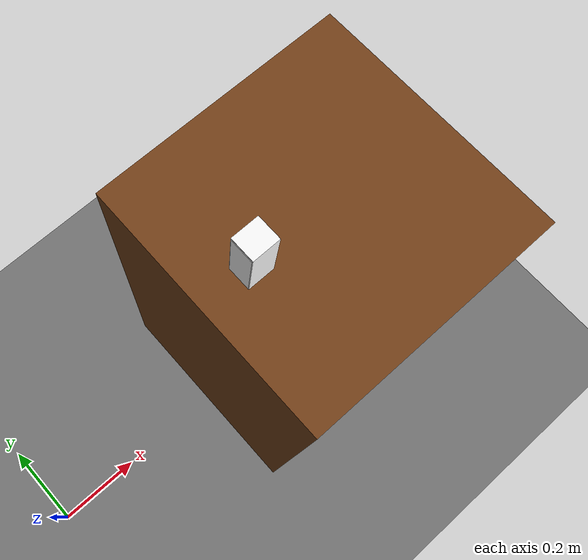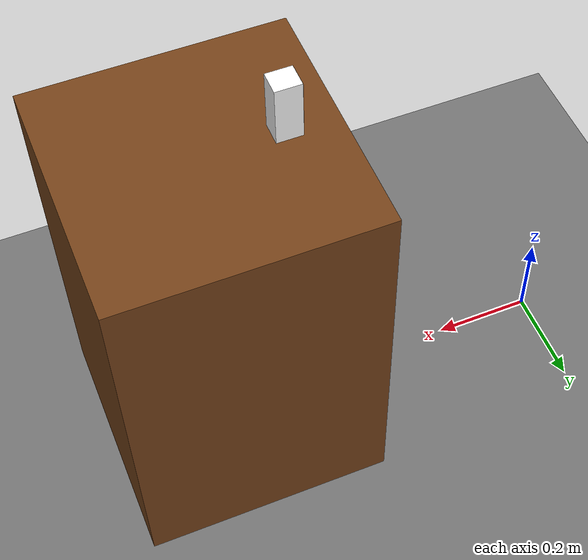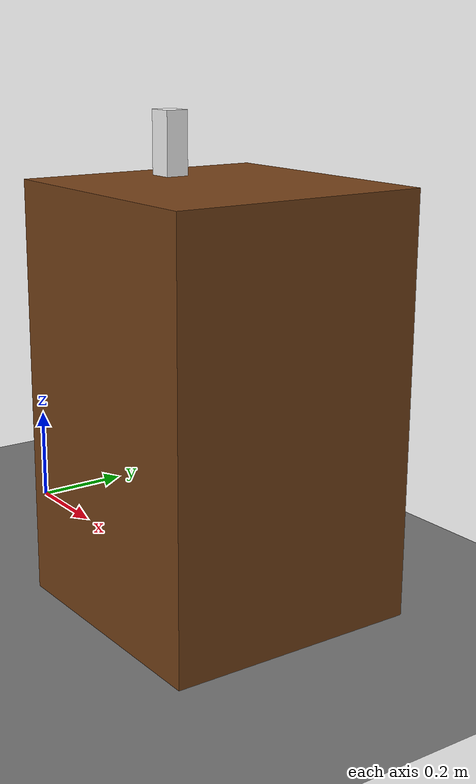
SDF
<?xml version="1.0" ?>
<sdf version="1.8">
  <world name="default">
    <gravity>0 0 -9.81</gravity>

    <physics name="1ms" type="ignored">
      <max_step_size>0.001</max_step_size>
      <real_time_factor>1.0</real_time_factor>
    </physics>

    <!-- Sistemas mínimos do Gazebo Fortress: física, spawn e visualização. -->
    <plugin
      filename="ignition-gazebo-physics-system"
      name="ignition::gazebo::systems::Physics"/>
    <plugin
      filename="ignition-gazebo-user-commands-system"
      name="ignition::gazebo::systems::UserCommands"/>
    <plugin
      filename="ignition-gazebo-scene-broadcaster-system"
      name="ignition::gazebo::systems::SceneBroadcaster"/>

    <!-- Necessário para câmeras, depth cameras e demais sensores. -->
    <plugin
      filename="ignition-gazebo-sensors-system"
      name="ignition::gazebo::systems::Sensors">
      <render_engine>ogre2</render_engine>
    </plugin>

    <light name="sun" type="directional">
      <cast_shadows>true</cast_shadows>
      <pose>0 0 10 0 0 0</pose>
      <diffuse>0.8 0.8 0.8 1</diffuse>
      <specular>0.2 0.2 0.2 1</specular>
      <direction>-0.5 0.1 -0.9</direction>
    </light>

    <model name="ground_plane">
      <static>true</static>
      <link name="link">
        <collision name="collision">
          <geometry>
            <plane>
              <normal>0 0 1</normal>
              <size>100 100</size>
            </plane>
          </geometry>
        </collision>
        <visual name="visual">
          <geometry>
            <plane>
              <normal>0 0 1</normal>
              <size>100 100</size>
            </plane>
          </geometry>
          <material>
            <ambient>0.35 0.35 0.35 1</ambient>
            <diffuse>0.45 0.45 0.45 1</diffuse>
          </material>
        </visual>
      </link>
    </model>

    <!-- Mesa: topo em z=0.80 m, mesma geometria usada na Planning Scene. -->
    <model name="pick_table">
      <static>true</static>
      <pose>0.70 0.00 0.40 0 0 0</pose>
      <link name="link">
        <collision name="collision">
          <geometry>
            <box>
              <size>0.50 0.50 0.80</size>
            </box>
          </geometry>
        </collision>
        <visual name="visual">
          <geometry>
            <box>
              <size>0.50 0.50 0.80</size>
            </box>
          </geometry>
          <material>
            <ambient>0.22 0.11 0.04 1</ambient>
            <diffuse>0.46 0.26 0.10 1</diffuse>
          </material>
        </visual>
      </link>
    </model>

    <!-- Produto azul: 5 x 5 x 8 cm, centro em z=0.84 m, topo em z=0.88 m. -->
    <model name="blue_product">
      <static>true</static>
      <pose>0.55 0.00 0.86 0 0 0</pose>
      <link name="link">
        <collision name="collision">
          <geometry>
            <box>
              <size>0.05 0.045 0.12</size>
            </box>
          </geometry>
        </collision>
        <visual name="visual">
          <geometry>
            <box>
              <size>0.05 0.045 0.12</size>
            </box>
          </geometry>
          <material>
            <ambient>0.90 0.90 0.90 1</ambient>
            <diffuse>0.98 0.98 0.98 1</diffuse>
            <specular>0.20 0.20 0.20 1</specular>
          </material>
        </visual>

        <!--
          Imagem frontal da embalagem usada no treinamento.
          É uma camada visual fina; a colisão continua sendo a caixa original.
        -->
        <visual name="bepantol_label_visual">
          <!-- Face da caixa voltada para a câmera. -->
          <pose>-0.0256 0 0 0 0 0</pose>

          <geometry>
            <box>
              <!--
                Espessura mínima, largura proporcional à imagem
                e altura próxima à altura total da embalagem.
              -->
              <size>0.0008 0.042 0.116</size>
            </box>
          </geometry>

          <material>
            <ambient>1 1 1 1</ambient>
            <diffuse>1 1 1 1</diffuse>

            <pbr>
              <metal>
                <albedo_map>
                  model://rav_manipulation_sim/materials/textures/bepantol_front_texture.png
                </albedo_map>
                <metalness>0.0</metalness>
                <roughness>0.8</roughness>
              </metal>
            </pbr>
          </material>
        </visual>

      </link>
    </model>
  </world>
</sdf>
